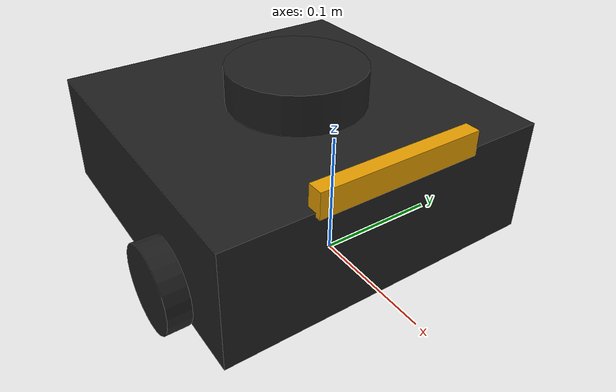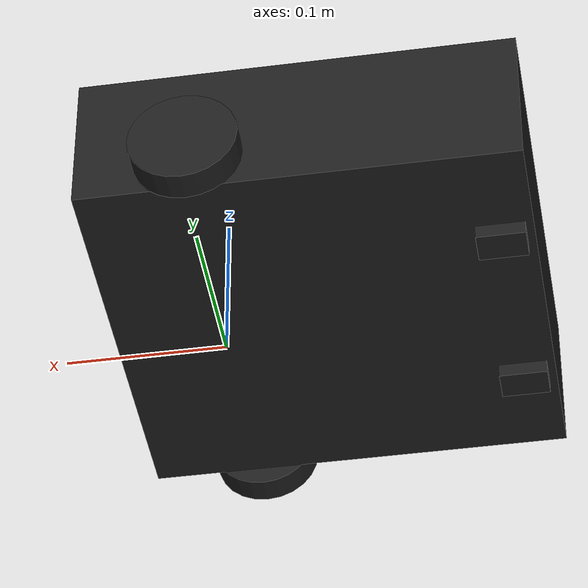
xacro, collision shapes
<?xml version="1.0" ?>
<robot name="turtlebot3_waffle" xmlns:xacro="http://ros.org/wiki/xacro">
  <xacro:include filename="common_properties.xacro"/>
  <xacro:include filename="turtlebot3_waffle.gazebo.xacro"/>

  <xacro:property name="r200_cam_rgb_px" value="0.005"/>
  <xacro:property name="r200_cam_rgb_py" value="0.018"/>
  <xacro:property name="r200_cam_rgb_pz" value="0.013"/>
  <xacro:property name="r200_cam_depth_offset" value="0.01"/>
  <xacro:arg name="tf_prefix" default="" />
  <xacro:property name="tf_prefix_" value="$(arg tf_prefix)" />
  <xacro:if value="${tf_prefix_ == ''}">
    <xacro:property name="prefix" value="" />
  </xacro:if>
  <xacro:unless value="${tf_prefix_ == ''}">
    <xacro:property name="prefix" value="${tf_prefix_}/" />
  </xacro:unless>

  <link name="${prefix}base_footprint"/>

  <joint name="${prefix}base_joint" type="fixed">
    <parent link="${prefix}base_footprint"/>
    <child link="${prefix}base_link" />
    <origin xyz="0 0 0.010" rpy="0 0 0"/>
  </joint>

  <link name="${prefix}base_link">
    <visual>
      <origin xyz="-0.064 0 0.0" rpy="0 0 0"/>
      <geometry>
        <mesh filename="package://models/ugv/base/waffle_base.stl" scale="0.001 0.001 0.001"/>
      </geometry>
      <material name="light_black"/>
    </visual>

    <collision>
      <origin xyz="-0.064 0 0.047" rpy="0 0 0"/>
      <geometry>
        <box size="0.266 0.266 0.094"/>
      </geometry>
    </collision>

    <inertial>
      <origin xyz="0 0 0" rpy="0 0 0"/>
      <mass value="1.3729096e+00"/>
      <inertia ixx="8.7002718e-03" ixy="-4.7576583e-05" ixz="1.1160499e-04"
               iyy="8.6195418e-03" iyz="-3.5422299e-06"
               izz="1.4612727e-02" />
    </inertial>
  </link>

  <joint name="${prefix}wheel_left_joint" type="continuous">
    <parent link="${prefix}base_link"/>
    <child link="${prefix}wheel_left_link"/>
    <origin xyz="0.0 0.144 0.023" rpy="-1.57 0 0"/>
    <axis xyz="0 0 1"/>
  </joint>

  <link name="${prefix}wheel_left_link">
    <visual>
      <origin xyz="0 0 0" rpy="1.57 0 0"/>
      <geometry>
        <mesh filename="package://models/ugv/wheels/left_tire.stl" scale="0.001 0.001 0.001"/>
      </geometry>
      <material name="dark"/>
    </visual>

    <collision>
      <origin xyz="0 0 0" rpy="0 0 0"/>
      <geometry>
        <cylinder length="0.018" radius="0.033"/>
      </geometry>
    </collision>

    <inertial>
      <origin xyz="0 0 0" />
      <mass value="2.8498940e-02" />
      <inertia ixx="1.1175580e-05" ixy="-4.2369783e-11" ixz="-5.9381719e-09"
               iyy="1.1192413e-05" iyz="-1.4400107e-11"
               izz="2.0712558e-05" />
      </inertial>
  </link>

  <joint name="${prefix}wheel_right_joint" type="continuous">
    <parent link="${prefix}base_link"/>
    <child link="${prefix}wheel_right_link"/>
    <origin xyz="0.0 -0.144 0.023" rpy="-1.57 0 0"/>
    <axis xyz="0 0 1"/>
  </joint>

  <link name="${prefix}wheel_right_link">
    <visual>
      <origin xyz="0 0 0" rpy="1.57 0 0"/>
      <geometry>
        <mesh filename="package://models/ugv/wheels/right_tire.stl" scale="0.001 0.001 0.001"/>
      </geometry>
      <material name="dark"/>
    </visual>

    <collision>
      <origin xyz="0 0 0" rpy="0 0 0"/>
      <geometry>
        <cylinder length="0.018" radius="0.033"/>
      </geometry>
    </collision>

    <inertial>
      <origin xyz="0 0 0" />
      <mass value="2.8498940e-02" />
      <inertia ixx="1.1175580e-05" ixy="-4.2369783e-11" ixz="-5.9381719e-09"
               iyy="1.1192413e-05" iyz="-1.4400107e-11"
               izz="2.0712558e-05" />
      </inertial>
  </link>

  <joint name="${prefix}caster_back_right_joint" type="fixed">
    <parent link="${prefix}base_link"/>
    <child link="${prefix}caster_back_right_link"/>
    <origin xyz="-0.177 -0.064 -0.004" rpy="-1.57 0 0"/>
  </joint>

  <link name="${prefix}caster_back_right_link">
    <collision>
      <origin xyz="0 0.001 0" rpy="0 0 0"/>
      <geometry>
        <box size="0.030 0.009 0.020"/>
      </geometry>
    </collision>

    <inertial>
      <origin xyz="0 0 0" />
      <mass value="0.005" />
      <inertia ixx="0.001" ixy="0.0" ixz="0.0"
               iyy="0.001" iyz="0.0"
               izz="0.001" />
    </inertial>
  </link>

  <joint name="${prefix}caster_back_left_joint" type="fixed">
    <parent link="${prefix}base_link"/>
    <child link="${prefix}caster_back_left_link"/>
    <origin xyz="-0.177 0.064 -0.004" rpy="-1.57 0 0"/>
  </joint>

  <link name="${prefix}caster_back_left_link">
    <collision>
      <origin xyz="0 0.001 0" rpy="0 0 0"/>
      <geometry>
        <box size="0.030 0.009 0.020"/>
      </geometry>
    </collision>

    <inertial>
      <origin xyz="0 0 0" />
      <mass value="0.005" />
      <inertia ixx="0.001" ixy="0.0" ixz="0.0"
               iyy="0.001" iyz="0.0"
               izz="0.001" />
    </inertial>
  </link>

  <joint name="${prefix}imu_joint" type="fixed">
    <parent link="${prefix}base_link"/>
    <child link="${prefix}imu_link"/>
    <origin xyz="0.0 0 0.068" rpy="0 0 0"/>
  </joint>

  <link name="${prefix}imu_link"/>

  <joint name="${prefix}scan_joint" type="fixed">
    <parent link="${prefix}base_link"/>
    <child link="${prefix}base_scan"/>
    <origin xyz="-0.064 0 0.122" rpy="0 0 0"/>
  </joint>

  <link name="${prefix}base_scan">
    <visual>
      <origin xyz="0 0 0" rpy="0 0 0"/>
      <geometry>
        <mesh filename="package://models/ugv/sensors/lds.stl" scale="0.001 0.001 0.001"/>
      </geometry>
      <material name="dark"/>
    </visual>

    <collision>
      <origin xyz="0.015 0 -0.0065" rpy="0 0 0"/>
      <geometry>
        <cylinder length="0.0315" radius="0.055"/>
      </geometry>
    </collision>

    <inertial>
      <mass value="0.114" />
      <origin xyz="0 0 0" />
      <inertia ixx="0.001" ixy="0.0" ixz="0.0"
               iyy="0.001" iyz="0.0"
               izz="0.001" />
    </inertial>
  </link>

  <joint name="${prefix}camera_joint" type="fixed">
    <origin xyz="0.064 -0.065 0.094" rpy="0 0 0"/>
    <parent link="${prefix}base_link"/>
    <child link="${prefix}camera_link"/>
  </joint>

  <link name="${prefix}camera_link">
    <visual>
     <origin xyz="0 0 0" rpy="1.57 0 1.57"/>
      <geometry>
       <mesh filename="package://models/ugv/sensors/r200.dae" />
      </geometry>
    </visual>
    <collision>
      <origin xyz="0.003 0.065 0.007" rpy="0 0 0"/>
      <geometry>
        <box size="0.012 0.132 0.020"/>
      </geometry>
    </collision>

    <!-- This inertial field needs doesn't contain reliable data!! -->
  </link>

  <joint name="${prefix}camera_rgb_joint" type="fixed">
    <origin xyz="${r200_cam_rgb_px} ${r200_cam_rgb_py} ${r200_cam_rgb_pz}" rpy="0 0 0"/>
    <parent link="${prefix}camera_link"/>
    <child link="${prefix}camera_rgb_frame"/>
  </joint>
  <link name="${prefix}camera_rgb_frame"/>

  <joint name="${prefix}camera_rgb_optical_joint" type="fixed">
    <origin xyz="0 0 0" rpy="-1.57 0 -1.57"/>
    <parent link="${prefix}camera_rgb_frame"/>
    <child link="${prefix}camera_rgb_optical_frame"/>
  </joint>
  <link name="${prefix}camera_rgb_optical_frame"/>

  <joint name="${prefix}camera_depth_joint" type="fixed">
    <origin xyz="${r200_cam_rgb_px} ${r200_cam_rgb_py + r200_cam_depth_offset} ${r200_cam_rgb_pz}" rpy="0 0 0"/>
    <parent link="${prefix}camera_link"/>
    <child link="${prefix}camera_depth_frame"/>
  </joint>
  <link name="${prefix}camera_depth_frame"/>

  <joint name="${prefix}camera_depth_optical_joint" type="fixed">
    <origin xyz="0 0 0" rpy="-1.57 0 -1.57"/>
    <parent link="${prefix}camera_depth_frame"/>
    <child link="${prefix}camera_depth_optical_frame"/>
  </joint>
  <link name="${prefix}camera_depth_optical_frame"/>

</robot>

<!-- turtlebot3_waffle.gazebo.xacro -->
<robot name="turtlebot3_waffle_sim" xmlns:xacro="http://ros.org/wiki/xacro">
  <xacro:arg name="laser_visual"  default="false"/>
  <xacro:arg name="camera_visual" default="false"/>
  <xacro:arg name="imu_visual"    default="false"/>
  <xacro:arg name="tf_prefix"    default=""/>
  <xacro:property name="tf_prefix_" value="$(arg tf_prefix)" />
  <xacro:if value="${tf_prefix_ == ''}">
    <xacro:property name="prefix" value="" />
  </xacro:if>
  <xacro:unless value="${tf_prefix_ == ''}">
    <xacro:property name="prefix" value="${tf_prefix_}/" />
  </xacro:unless>

  <gazebo reference="${prefix}base_link">
    <material>Gazebo/DarkGrey</material>
  </gazebo>

  <gazebo reference="${prefix}wheel_left_link">
    <mu1>0.1</mu1>
    <mu2>0.1</mu2>
    <kp>500000.0</kp>
    <kd>10.0</kd>
    <minDepth>0.001</minDepth>
    <maxVel>0.1</maxVel>
    <fdir1>1 0 0</fdir1>
    <material>Gazebo/FlatBlack</material>
  </gazebo>

  <gazebo reference="${prefix}wheel_right_link">
    <mu1>0.1</mu1>
    <mu2>0.1</mu2>
    <kp>500000.0</kp>
    <kd>10.0</kd>
    <minDepth>0.001</minDepth>
    <maxVel>0.1</maxVel>
    <fdir1>1 0 0</fdir1>
    <material>Gazebo/FlatBlack</material>
  </gazebo>

  <gazebo reference="${prefix}caster_back_right_link">
    <mu1>0.1</mu1>
    <mu2>0.1</mu2>
    <kp>1000000.0</kp>
    <kd>100.0</kd>
    <minDepth>0.001</minDepth>
    <maxVel>1.0</maxVel>
    <material>Gazebo/FlatBlack</material>
  </gazebo>

  <gazebo reference="${prefix}caster_back_left_link">
    <mu1>0.1</mu1>
    <mu2>0.1</mu2>
    <kp>1000000.0</kp>
    <kd>100.0</kd>
    <minDepth>0.001</minDepth>
    <maxVel>1.0</maxVel>
    <material>Gazebo/FlatBlack</material>
  </gazebo>

  <gazebo reference="${prefix}imu_link">
    <sensor type="imu" name="imu">
      <always_on>true</always_on>
      <visualize>$(arg imu_visual)</visualize>
    </sensor>
    <material>Gazebo/Grey</material>
  </gazebo>

  <gazebo>
    <plugin name="turtlebot3_waffle_controller" filename="libgazebo_ros_diff_drive.so">
      <commandTopic>cmd_vel</commandTopic>
      <odometryTopic>odom</odometryTopic>
      <odometryFrame>odom</odometryFrame>
      <odometrySource>world</odometrySource>
      <publishOdomTF>true</publishOdomTF>
      <robotBaseFrame>${prefix}base_footprint</robotBaseFrame>
      <publishWheelTF>false</publishWheelTF>
      <publishTf>true</publishTf>
      <publishWheelJointState>true</publishWheelJointState>
      <legacyMode>false</legacyMode>
      <updateRate>30</updateRate>
      <leftJoint>${prefix}wheel_left_joint</leftJoint>
      <rightJoint>${prefix}wheel_right_joint</rightJoint>
      <wheelSeparation>0.287</wheelSeparation>
      <wheelDiameter>0.066</wheelDiameter>
      <wheelAcceleration>1</wheelAcceleration>
      <wheelTorque>10</wheelTorque>
      <rosDebugLevel>na</rosDebugLevel>
    </plugin>
  </gazebo>

  <gazebo>
    <plugin name="imu_plugin" filename="libgazebo_ros_imu.so">
      <alwaysOn>true</alwaysOn>
      <bodyName>imu_link</bodyName>
      <frameName>imu_link</frameName>
      <topicName>imu</topicName>
      <serviceName>imu_service</serviceName>
      <gaussianNoise>0.0</gaussianNoise>
      <updateRate>0</updateRate>
      <imu>
        <noise>
          <type>gaussian</type>
          <rate>
            <mean>0.0</mean>
            <stddev>2e-4</stddev>
            <bias_mean>0.0000075</bias_mean>
            <bias_stddev>0.0000008</bias_stddev>
          </rate>
          <accel>
            <mean>0.0</mean>
            <stddev>1.7e-2</stddev>
            <bias_mean>0.1</bias_mean>
            <bias_stddev>0.001</bias_stddev>
          </accel>
        </noise>
      </imu>
    </plugin>
  </gazebo>

  <gazebo reference="${prefix}base_scan">
    <material>Gazebo/FlatBlack</material>
    <sensor type="ray" name="lds_lfcd_sensor">
      <pose>0 0 0 0 0 0</pose>
      <visualize>$(arg laser_visual)</visualize>
      <update_rate>5</update_rate>
      <ray>
        <scan>
          <horizontal>
            <samples>360</samples>
            <resolution>1</resolution>
            <min_angle>0.0</min_angle>
            <max_angle>6.28319</max_angle>
          </horizontal>
        </scan>
        <range>
          <min>0.120</min>
          <max>3.5</max>
          <resolution>0.015</resolution>
        </range>
        <noise>
          <type>gaussian</type>
          <mean>0.0</mean>
          <stddev>0.01</stddev>
        </noise>
      </ray>
      <plugin name="gazebo_ros_lds_lfcd_controller" filename="libgazebo_ros_laser.so">
        <topicName>scan</topicName>
        <frameName>${prefix}base_scan</frameName>
      </plugin>
    </sensor>
  </gazebo>

  <gazebo reference="camera_rgb_frame">
    <sensor type="depth" name="realsense_R200">
      <always_on>true</always_on>
      <visualize>$(arg camera_visual)</visualize>
      <camera>
          <horizontal_fov>1.3439</horizontal_fov>
          <image>
              <width>1920</width>
              <height>1080</height>
              <format>R8G8B8</format>
          </image>
          <depth_camera></depth_camera>
          <clip>
              <near>0.03</near>
              <far>100</far>
          </clip>
      </camera>
      <plugin name="camera_controller" filename="libgazebo_ros_openni_kinect.so">
        <baseline>0.2</baseline>
        <alwaysOn>true</alwaysOn>
        <updateRate>30.0</updateRate>
        <cameraName>camera</cameraName>
        <frameName>${prefix}camera_rgb_optical_frame</frameName>
        <imageTopicName>rgb/image_raw</imageTopicName>
        <depthImageTopicName>depth/image_raw</depthImageTopicName>
        <pointCloudTopicName>depth/points</pointCloudTopicName>
        <cameraInfoTopicName>rgb/camera_info</cameraInfoTopicName>
        <depthImageCameraInfoTopicName>depth/camera_info</depthImageCameraInfoTopicName>
        <pointCloudCutoff>0.4</pointCloudCutoff>
            <hackBaseline>0.07</hackBaseline>
            <distortionK1>0.0</distortionK1>
            <distortionK2>0.0</distortionK2>
            <distortionK3>0.0</distortionK3>
            <distortionT1>0.0</distortionT1>
            <distortionT2>0.0</distortionT2>
        <CxPrime>0.0</CxPrime>
        <Cx>0.0</Cx>
        <Cy>0.0</Cy>
        <focalLength>0</focalLength>
        <hackBaseline>0</hackBaseline>
      </plugin>
    </sensor>
  </gazebo>

</robot>
